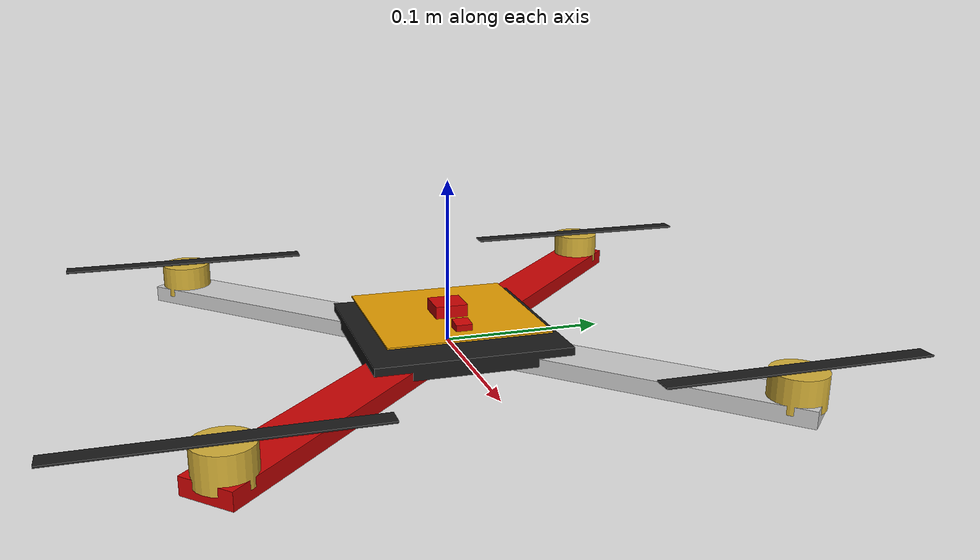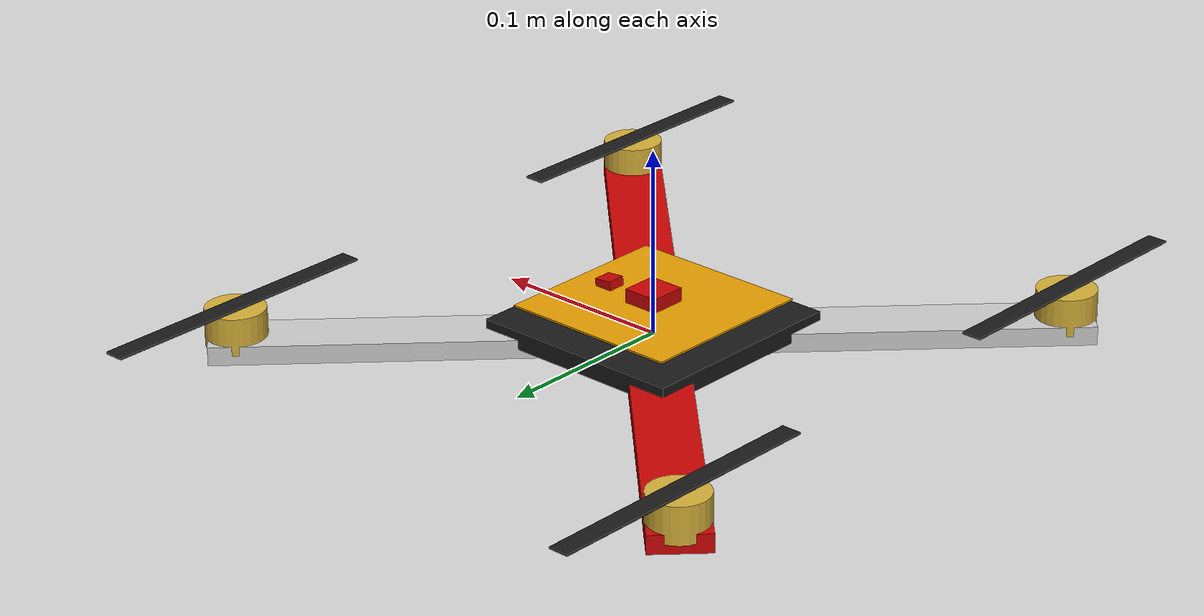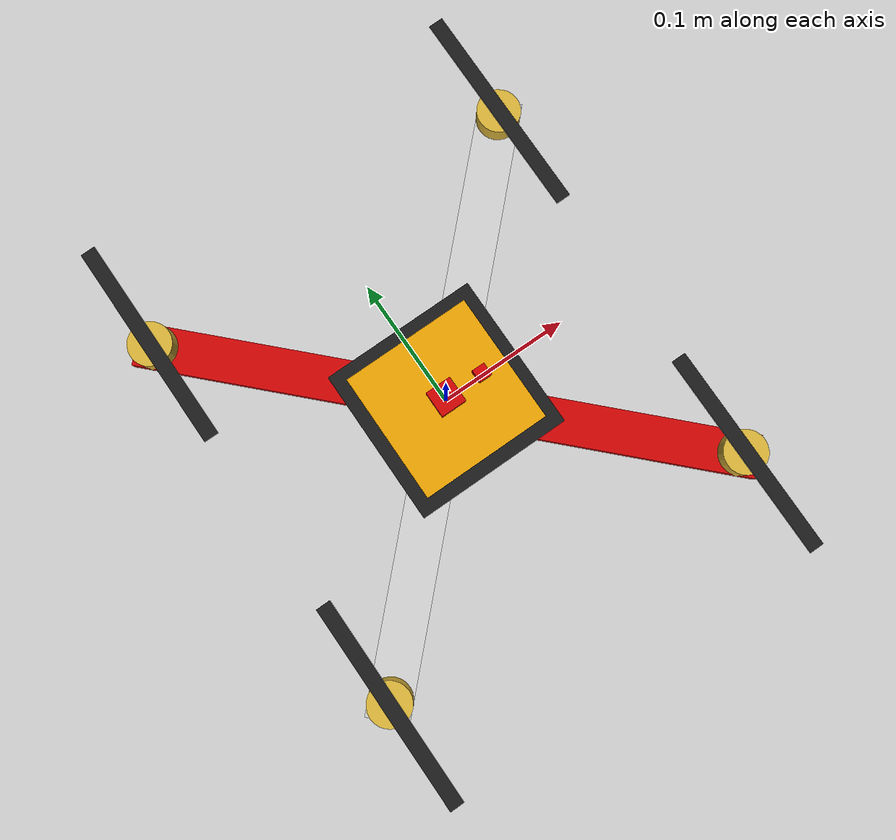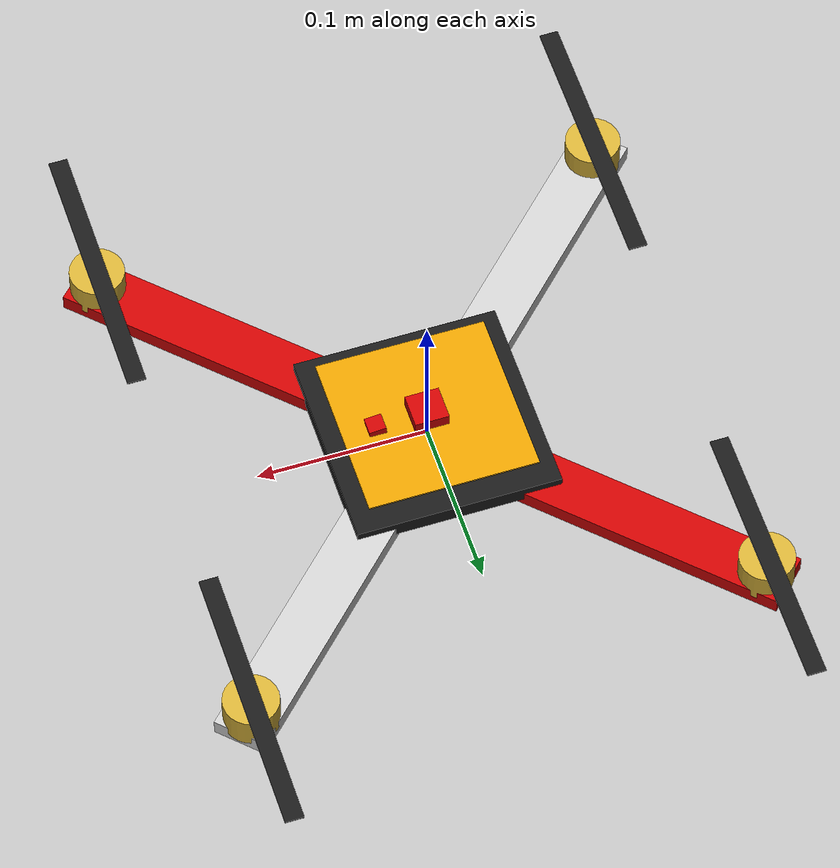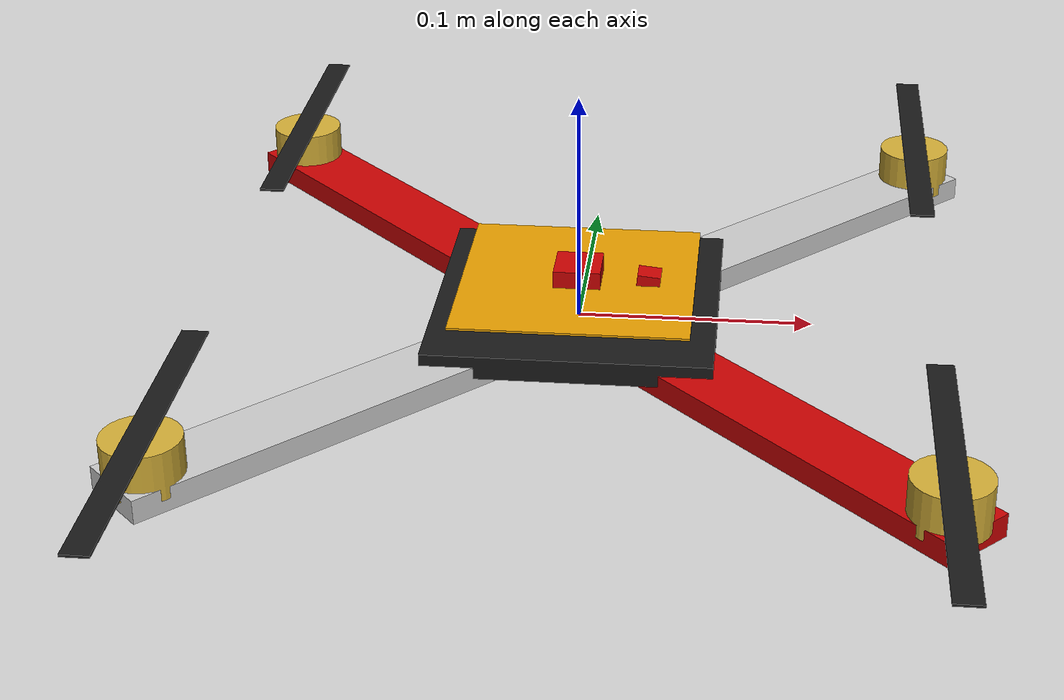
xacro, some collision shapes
<?xml version="1.0"?>
<robot xmlns:xacro="http://www.ros.org/wiki/xacro" name="Kwad">
	<xacro:property name="width" value="0.0315" />
	<xacro:property name="length" value="0.45" />
	<xacro:property name="height" value="0.01" />
	<xacro:property name="mass_fr" value="0.5" />
	<xacro:property name="mass_pr" value="0.0055" />
	<xacro:property name="pi_value" value="3.14159263" />
	<xacro:property name="radiusp" value="0.20" />
	<xacro:property name="prop_loc" value="0.15909" />
	<xacro:include filename="$(find fly_bot)/urdf/material.xacro" />
	<xacro:include filename="$(find fly_bot)/urdf/Kwad.gazebo" />
	<!-- Define inertial macro -->
	<xacro:macro name="default_inertial" params="mass p ix_value iy_value iz_value" >
		<inertial>
			<origin xyz="0 0 0" rpy="0 0 ${p}" />
			<mass value="${mass}" />
			<inertia ixx="${ix_value}" ixy="0" ixz="0"
					 iyy="${iy_value}" iyz="0" izz="${iz_value}" />
		</inertial>
	</xacro:macro>
	<link name="base_link1">
		<visual>
			<origin xyz="0 0 0" rpy="0 0 ${pi_value/4}" />

			<geometry>
				<box size="${width} ${length} ${height}" />
			</geometry>

			<material name="red" />
		</visual>

		<collision>
			<origin xyz="0 0 0" rpy="0 0 ${pi_value/4}" />

			<geometry>
				<box size="${width} ${length} ${height}" />
			</geometry>
		</collision>

		<xacro:default_inertial mass="${mass_fr}" p="${pi_value/4}" ix_value="${0.04989/2}" iy_value="${0.04989/2}" iz_value="${0.24057/2}" />

	</link>
	<link name="base_link2">
		<visual>
			<origin xyz="0 0 0" rpy="0 0 ${-pi_value/4}" />

			<geometry>
				<box size="${width} ${length} ${height}" />
			</geometry>

			<material name="white" />
		</visual>

		<collision>
			<origin xyz="0 0 0" rpy="0 0 ${-pi_value/4}" />

			<geometry>
				<box size="${width} ${length} ${height}" />
			</geometry>
		</collision>

		<xacro:default_inertial mass="${mass_fr}" p="${-pi_value/4}" ix_value="${0.04989/2}" iy_value="${0.04989/2}" iz_value="${0.24057/2}" />
	</link>
	<link name="plate1">
		<visual>
			<origin xyz="0 0 0" rpy="0 0 0" />

			<geometry>
				<box size="${0.12} ${0.12} ${0.01}" />
			</geometry>

			<material name="black" />
		</visual>

		<collision>
			<origin xyz="0 0 0" rpy="0 0 0" />

			<geometry>
				<box size="${0.12} ${0.12} ${0.01}" />
			</geometry>
		</collision>

		<xacro:default_inertial mass="${0.01}" p="${0}" ix_value="${0}" iy_value="${0}" iz_value="${2.4-5}" />
	</link>
	<link name="plate2">
		<visual>
			<origin xyz="0 0 0" rpy="0 0 0" />

			<geometry>
				<box size="${0.05} ${0.03} ${0.005}" />
			</geometry>

			<material name="blue" />
		</visual>

		<collision>
			<origin xyz="0 0 0" rpy="0 0 0" />

			<geometry>
				<box size="${0.05} ${0.03} ${0.005}" />
			</geometry>
		</collision>

		<xacro:default_inertial mass="${0.001}" p="${0}" ix_value="${0}" iy_value="${0}" iz_value="${8.1666-7}" />
	</link>
	<link name="cyl1">
		<visual>
			<origin xyz="0 0 0" rpy="0 0 0" />

			<geometry>
				<cylinder radius="0.016" length="0.02" />
			</geometry>

			<material name="golden" />
		</visual>

		<collision>
			<origin xyz="0 0 0" rpy="0 0 0" />

			<geometry>
				<cylinder radius="0.016" length="0.02" />
			</geometry>
		</collision>

		<xacro:default_inertial mass="${0.01}" p="${0}" ix_value="${8.95e-6}" iy_value="${8.95e-6}" iz_value="${2.23e-4}" />
	</link>
	<link name="cyl2">
		<visual>
			<origin xyz="0 0 0" rpy="0 0 0" />

			<geometry>
				<cylinder radius="0.016" length="0.02" />
			</geometry>

			<material name="golden" />
		</visual>

		<collision>
			<origin xyz="0 0 0" rpy="0 0 0" />

			<geometry>
				<cylinder radius="0.016" length="0.02" />
			</geometry>
		</collision>

		<xacro:default_inertial mass="${0.01}" p="${0}" ix_value="${8.95e-6}" iy_value="${8.95e-6}" iz_value="${2.23e-4}" />
	</link>
	<link name="cyl3">
		<visual>
			<origin xyz="0 0 0" rpy="0 0 0" />

			<geometry>
				<cylinder radius="0.016" length="0.02" />
			</geometry>

			<material name="golden" />
		</visual>

		<collision>
			<origin xyz="0 0 0" rpy="0 0 0" />

			<geometry>
				<cylinder radius="0.016" length="0.02" />
			</geometry>
		</collision>

		<xacro:default_inertial mass="${0.01}" p="${0}" ix_value="${8.95e-6}" iy_value="${8.95e-6}" iz_value="${2.23e-4}" />
	</link>
	<link name="cyl4">
		<visual>
			<origin xyz="0 0 0" rpy="0 0 0" />

			<geometry>
				<cylinder radius="0.016" length="0.02" />
			</geometry>

			<material name="golden" />
		</visual>

		<collision>
			<origin xyz="0 0 0" rpy="0 0 0" />

			<geometry>
				<cylinder radius="0.016" length="0.02" />
			</geometry>
		</collision>

		<xacro:default_inertial mass="${0.01}" p="${0}" ix_value="${8.95e-6}" iy_value="${8.95e-6}" iz_value="${2.23e-4}" />
	</link>
	<link name="arduino">
		<visual>
			<origin xyz="0 0 0" rpy="0 0 0" />
			<geometry>
				<mesh filename="package://fly_bot/meshes/22V10.dae" scale="0.005 0.005 0.005" />
			</geometry>
		</visual>
		<collision>
			<origin xyz="0 0 0" rpy="0 0 0" />
			<geometry>
				<box size="0.1 0.1 0.001" />
			</geometry>
		</collision>
		<xacro:default_inertial mass="${0.05}" p="${0}" ix_value="${0}" iy_value="${0}" iz_value="${8.33333e-5}" />
	</link>
	<link name="camera_link">
		<visual>
			<origin xyz="0 0 0" rpy="0 0 0" />
			<geometry>
				<box size="0.01 0.01 0.01" />
			</geometry>

			<material name="red" />

		</visual>

		<collision>
			<origin xyz="0 0 0" rpy="0 0 0" />
			<geometry>
				<box size="0.01 0.01 0.01" />
			</geometry>
		</collision>

		<xacro:default_inertial mass="${1e-5}" p="${0}" ix_value="${1e-6}" iy_value="${1e-6}" iz_value="${1e-6}" />
	</link>

  <link name="imu_sensor_link">
    <collision>
      <origin rpy="0 0 0" xyz="0 0 0"/>
      <geometry>
        <box size="0.02 0.02 0.02"/>
      </geometry>
    </collision>
    <visual>
      <origin rpy="0 0 0" xyz="0 0 0"/>
      <geometry>
        <box size="0.02 0.02 0.02"/>
      </geometry>
      <material name="red"/>
    </visual>
    <inertial>
      <mass value="0.001"/>
      <origin rpy="0 0 0" xyz="0 0 0"/>
      <inertia ixx="0.00000015" ixy="0" ixz="0" iyy="0.00000015" iyz="0" izz="0.00000015"/>
    </inertial>
  </link>

	<!-- Propellers of the quad: fr, fl, br, bl -->
	<link name="prop_front_right">
		<visual>
			<origin xyz="0 0 0" rpy="0 0 0" />

			<geometry>
				<box size="${0.03302/3} ${radiusp*0.8} ${0.001}" />
			</geometry>

			<material name="black" />
		</visual>

		<collision>
			<origin xyz="0 0 0" rpy="0 0 0" />

			<geometry>
				<box size="${0.03302/3} ${radiusp*0.8} ${0.001}" />
			</geometry>
		</collision>

		<xacro:default_inertial mass="${mass_pr}" p="${0}" ix_value="${0}" iy_value="${0}" iz_value="${4.42448e-5}" />
	</link>

	<link name="prop_front_left">
		<visual>
			<origin xyz="0 0 0" rpy="0 0 0" />

			<geometry>
				<box size="${0.03302/3} ${radiusp*0.8} ${0.001}" />
			</geometry>

			<material name="black"/>
		</visual>

		<collision>
			<origin xyz="0 0 0" rpy="0 0 0" />

			<geometry>
				<box size="${0.03302/3} ${radiusp*0.8} ${0.001}" />
			</geometry>
		</collision>

		<xacro:default_inertial mass="${mass_pr}" p="${0}"  ix_value="${0}" iy_value="${0}" iz_value="${4.42448e-5}" />

	</link>

	<link name="prop_back_right">
		<visual>
			<origin xyz="0 0 0" rpy="0 0 0" />

			<geometry>
				<box size="${0.03302/3} ${radiusp*0.8} ${0.001}" />
			</geometry>

			<material name="black"/>
		</visual>

		<collision>
			<origin xyz="0 0 0" rpy="0 0 0" />

			<geometry>
				<box size="${0.03302/3} ${radiusp*0.8} ${0.001}" />
			</geometry>
		</collision>

		<xacro:default_inertial mass="${mass_pr}" p="${0}"  ix_value="${0}" iy_value="${0}" iz_value="${4.42448e-5}" />

	</link>

	<link name="prop_back_left">
		<visual>
			<origin xyz="0 0 0" rpy="0 0 0" />

			<geometry>
				<box size="${0.03302/3} ${radiusp*0.8} ${0.001}" />
			</geometry>

			<material name="black"/>
		</visual>

		<collision>
			<origin xyz="0 0 0" rpy="0 0 0" />

			<geometry>
				<box size="${0.03302/3} ${radiusp*0.8} ${0.001}" />
			</geometry>
		</collision>

		<xacro:default_inertial mass="${mass_pr}" p="${0}"  ix_value="${0}" iy_value="${0}" iz_value="${4.42448e-5}" />

	</link>
	<!-- Define the joint between the arms of the frame -->
	<joint name="center" type="fixed">
		<parent link="base_link1" />
		<child link="base_link2" />

		<origin xyz="0 0 0" rpy="0 0 0"/>
		<axis xyz="0 0 1" />
	</joint>
	<!-- Define joint between prop fr and frame -->
	<joint name="joint_front_right_prop" type="continuous">
		<parent link="base_link2" />
		<child link="prop_front_right" />
		<origin xyz="${prop_loc - 0.01} ${prop_loc - 0.01} 0.021" rpy="0 0 0"/>
		<axis xyz="0 0 1" />
	</joint>
	<!-- Define joint between prop fl and frame -->
	<joint name="joint_front_left_prop" type="continuous">
		<parent link="base_link1" />
		<child link="prop_front_left" />
		<origin xyz="${-prop_loc + 0.01} ${prop_loc - 0.01} 0.021" rpy="0 0 0" />
		<axis xyz="0 0 1" />
	</joint>
<!-- Define joint between prop br and frame -->
	<joint name="joint_back_right_prop" type="continuous">
		<parent link="base_link1" />
		<child link="prop_back_right" />
		<origin xyz="${prop_loc - 0.01} ${-prop_loc + 0.01} 0.021" rpy="0 0 0" />
		<axis xyz="0 0 1" />
	</joint>
<!-- Define joint between prop br and frame -->
	<joint name="joint_back_left_prop" type="continuous">
		<parent link="base_link2" />
		<child link="prop_back_left" />
		<origin xyz="${-prop_loc + 0.01} ${-prop_loc + 0.01} 0.021" rpy="0 0 0" />
		<axis xyz="0 0 1" />
	</joint>
<!-- Define joint between plate1 and frame -->
	<joint name="joint_plate1_frame" type="fixed">
		<parent link="base_link2" />
		<child link="plate1" />
		<origin xyz="${0} ${0} 0.005" rpy="0 0 0" />
		<axis xyz="0 0 1" />
	</joint>
<!-- Define joint between plate1 and plate2 -->
	<joint name="joint_plate2_frame" type="fixed">
		<parent link="plate1" />
		<child link="plate2" />
		<origin xyz="${0} ${0} 0.007" rpy="0 0 0" />
		<axis xyz="0 0 1" />
	</joint>
<!-- Define joint between cyl1 and frame -->
	<joint name="joint_cyl1_frame" type="fixed">
		<parent link="base_link2" />
		<child link="cyl1" />
		<origin xyz="${prop_loc - 0.01} ${prop_loc - 0.01} 0.01" rpy="0 0 0" />
		<axis xyz="0 0 1" />
	</joint>
<!-- Define joint between cyl2 and frame -->
	<joint name="joint_cyl2_frame" type="fixed">
		<parent link="base_link2" />
		<child link="cyl2" />
		<origin xyz="${-prop_loc + 0.01} ${-prop_loc + 0.01} 0.01" rpy="0 0 0" />
		<axis xyz="0 0 1" />
	</joint>
<!-- Define joint between cyl3 and frame -->
	<joint name="joint_cyl3_frame" type="fixed">
		<parent link="base_link1" />
		<child link="cyl3" />
		<origin xyz="${-prop_loc + 0.01} ${prop_loc - 0.01} 0.01" rpy="0 0 0" />
		<axis xyz="0 0 1" />
	</joint>
<!-- Define joint between cyl4 and frame -->
	<joint name="joint_cyl4_frame" type="fixed">
		<parent link="base_link1" />
		<child link="cyl4" />
		<origin xyz="${prop_loc - 0.01} ${-prop_loc + 0.01} 0.01" rpy="0 0 0" />
		<axis xyz="0 0 1" />
	</joint>
<!-- Define joint between Arduino and frame -->
	<joint name="joint_arduino_frame" type="fixed">
		<parent link="plate2" />
		<child link="arduino" />
		<origin xyz="${0} ${0} 0.005" rpy="0 0 0" />
		<axis xyz="0 0 1" />
	</joint>
<!-- Define joint between Arduino and frame -->
	<joint name="joint_camera_frame" type="fixed">
		<parent link="plate2" />
		<child link="camera_link" />
		<origin xyz="${0.03} ${0} 0.005" rpy="0 0.1 0" />
		<axis xyz="0 0 1" />
	</joint>

<!-- Define joint between IMU and frame -->

  <joint name="imu_sensor_joint" type="fixed">
    <axis xyz="0 0 1"/>
    <origin rpy="0 0 0" xyz="0 0 0.01"/>
    <parent link="plate1"/>
    <child link="imu_sensor_link"/>
  </joint>
<!-- Add transmission elements -->
	<transmission name="front_right_motor_joint" >
		<type>transmission_interface/SimpleTransmission</type>
		<joint name="joint_front_right_prop">
			<hardwareInterface>hardware_interface/VelocityJointInterface</hardwareInterface>
		</joint>
		<actuator name="BLDC_motor1">
			<hardwareInterface>hardware_interface/VelocityJointInterface</hardwareInterface>
			<mechanicalReduction>1</mechanicalReduction>
		</actuator>
	</transmission>

	<transmission name="front_left_motor_joint" >
		<type>transmission_interface/SimpleTransmission</type>
		<joint name="joint_front_left_prop">
			<hardwareInterface>hardware_interface/VelocityJointInterface</hardwareInterface>
		</joint>
		<actuator name="BLDC_motor2">
			<hardwareInterface>hardware_interface/VelocityJointInterface</hardwareInterface>
			<mechanicalReduction>1</mechanicalReduction>
		</actuator>
	</transmission>

	<transmission name="back_right_motor_joint" >
		<type>transmission_interface/SimpleTransmission</type>
		<joint name="joint_back_right_prop">
			<hardwareInterface>hardware_interface/VelocityJointInterface</hardwareInterface>
		</joint>
		<actuator name="BLDC_motor3">
			<hardwareInterface>hardware_interface/VelocityJointInterface</hardwareInterface>
			<mechanicalReduction>1</mechanicalReduction>
		</actuator>
	</transmission>

	<transmission name="back_left_motor_joint" >
		<type>transmission_interface/SimpleTransmission</type>
		<joint name="joint_back_left_prop">
			<hardwareInterface>hardware_interface/VelocityJointInterface</hardwareInterface>
		</joint>
		<actuator name="BLDC_motor4">
			<hardwareInterface>hardware_interface/VelocityJointInterface</hardwareInterface>
			<mechanicalReduction>1</mechanicalReduction>
		</actuator>
	</transmission>

</robot>

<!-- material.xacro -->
<robot>

	<material name="white">
		<color rgba="0.8 0.8 0.8 1" />
	</material>

	<material name="black">
		<color rgba="0.1 0.1 0.1 1" />
	</material>

	<material name="red">
		<color rgba="0.8 0.01 0.01 1" />
	</material>

	<material name="blue">
		<color rgba="0.01 0.01 0.8 1" />
	</material>

	<material name="yellow">
		<color rgba="0.8 0.8 0.01 1" />
	</material>

	<material name="golden">
		<color rgba="${212/255} ${175/255} ${55/255} 1" />
	</material>

</robot>
